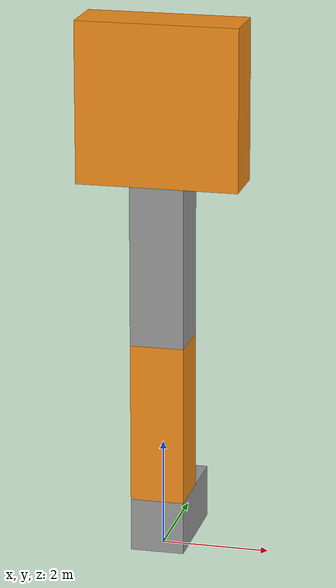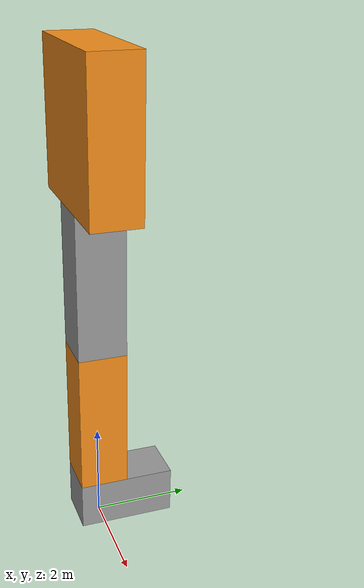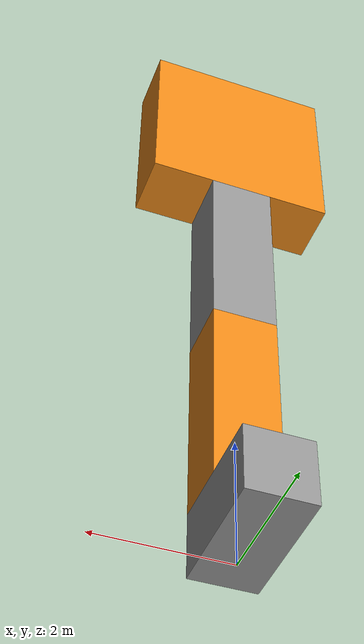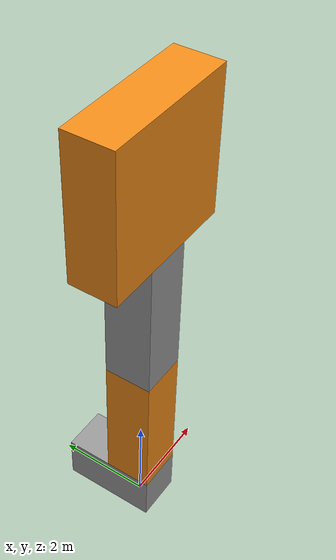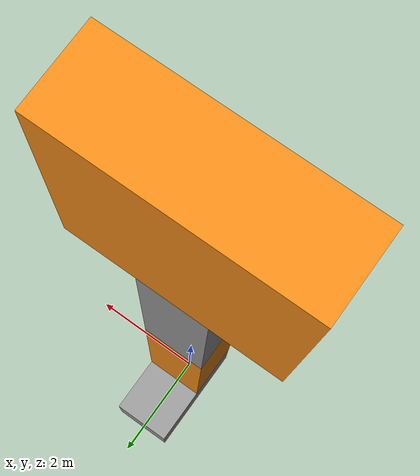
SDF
<?xml version="1.0" ?>
<sdf version="1.5">
  <model name="simple_one_legged_robot">
    <static>false</static>

    <link name="torso">
      <gravity>0</gravity>
      <collision name="collision">
        <pose>0 0 8.5 0 0 0</pose>
        <geometry>
          <box>
            <size>3 1 3</size>
          </box>
        </geometry>
        <surface>
          <friction>
            <ode>
              <mu>100</mu>
              <mu2>50</mu2>
            </ode>
          </friction>
        </surface>
      </collision>
      <visual name="visual">
        <pose>0 0 8.5 0 0 0</pose>
        <geometry>
          <box>
            <size>3 1 3</size>
          </box>
        </geometry>
        <material>
          <script>
            <uri>file://media/materials/scripts/gazebo.material</uri>
            <name>Gazebo/Orange</name>
          </script>
        </material>
      </visual>
    </link>

    <link name="tigh">
      <gravity>0</gravity>
      <collision name="collision">
        <pose>0 0 5.5 0 0 0</pose>
        <geometry>
          <box>
            <size>1 1 3</size>
          </box>
        </geometry>
        <surface>
          <friction>
            <ode>
              <mu>100</mu>
              <mu2>50</mu2>
            </ode>
          </friction>
        </surface>
      </collision>
      <visual name="visual">
        <pose>0 0 5.5 0 0 0</pose>
        <geometry>
          <box>
            <size>1 1 3</size>
          </box>
        </geometry>
        <material>
          <script>
            <uri>file://media/materials/scripts/gazebo.material</uri>
            <name>Gazebo/Grey</name>
          </script>
        </material>
      </visual>
    </link>

    <link name="calf">
      <gravity>0</gravity>
      <collision name="collision">
        <pose>0 0 2.5 0 0 0</pose>
        <geometry>
          <box>
            <size>1 1 3</size>
          </box>
        </geometry>
        <surface>
          <friction>
            <ode>
              <mu>100</mu>
              <mu2>50</mu2>
            </ode>
          </friction>
        </surface>
      </collision>
      <visual name="visual">
        <pose>0 0 2.5 0 0 0</pose>
        <geometry>
          <box>
            <size>1 1 3</size>
          </box>
        </geometry>
        <material>
          <script>
            <uri>file://media/materials/scripts/gazebo.material</uri>
            <name>Gazebo/Orange</name>
          </script>
        </material>
      </visual>
    </link>

    <link name="foot">
      <gravity>0</gravity>
      <collision name="collision">
        <pose>0.5 0 0.5 0 0 0</pose>
        <geometry>
          <box>
            <size>1 2 1</size>
          </box>
        </geometry>
        <surface>
          <friction>
            <ode>
              <mu>100</mu>
              <mu2>50</mu2>
            </ode>
          </friction>
        </surface>
      </collision>
      <visual name="visual">
        <pose>0 0.5 0.5 0 0 0</pose>
        <geometry>
          <box>
            <size>1 2 1</size>
          </box>
        </geometry>
        <material>
          <script>
            <uri>file://media/materials/scripts/gazebo.material</uri>
            <name>Gazebo/Grey</name>
          </script>
        </material>
      </visual>
    </link>

    <joint type="revolute" name="hip">
      <pose>0 0 1.5 0 0 0</pose>
      <child>tigh</child>
      <parent>torso</parent>
      <axis>
        <xyz>1 0 0</xyz>
      </axis>
    </joint>

    <joint type="revolute" name="knee">
      <pose>0 0 1.5 0 0 0</pose>
      <child>calf</child>
      <parent>tigh</parent>
      <axis>
        <xyz>1 0 0</xyz>
      </axis>
    </joint>

    <joint type="revolute" name="ankle">
      <pose>0 0 0.5 0 0 0</pose>
      <child>foot</child>
      <parent>calf</parent>
      <axis>
        <xyz>1 0 0</xyz>
      </axis>
    </joint>
  </model>
</sdf>
